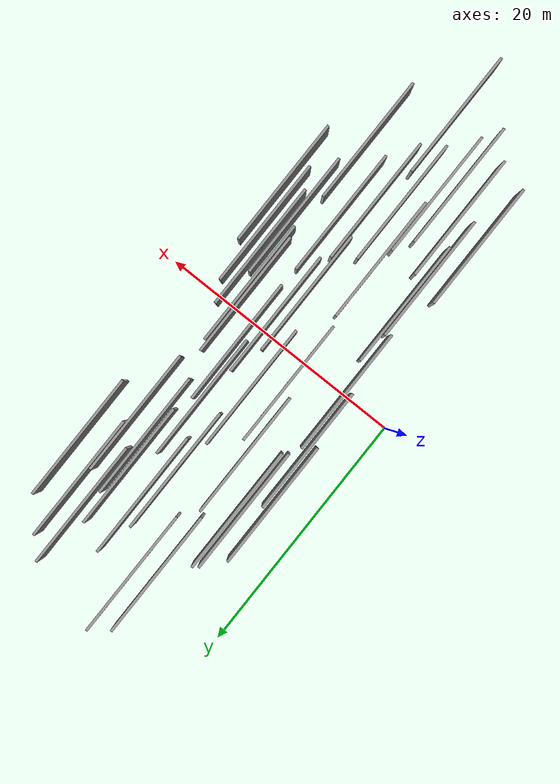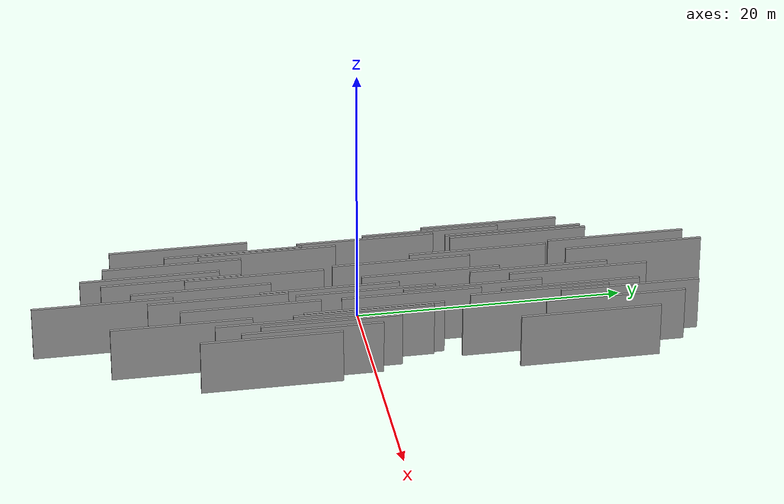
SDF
<sdf version="1.6">
 <world name="default">
  <scene>
   <sky><clouds><speed>12</speed></clouds></sky>
   <ambient>0.4 0.4 0.4 1</ambient>
   <background>0.7 0.7 0.7 1</background>
   <shadows>1</shadows>
  </scene>
  <gravity>0 0 -9.8066</gravity>
  <magnetic_field>6e-06 2.3e-05 -4.2e-05</magnetic_field>
  <physics default="0" name="default_physics" type="ode">
   <ode>
    <solver>
     <type>quick</type>
     <iters>10</iters>
     <sor>1.0</sor>
     <use_dynamic_moi_rescaling>0</use_dynamic_moi_rescaling>
    </solver>
    <constraints>
     <cfm>0</cfm>
     <erp>0.2</erp>
     <contact_max_correcting_vel>100</contact_max_correcting_vel>
     <contact_surface_layer>0.001</contact_surface_layer>
    </constraints>
   </ode>
   <max_step_size>0.004</max_step_size>
   <real_time_factor>1</real_time_factor>
   <real_time_update_rate>250</real_time_update_rate>
  </physics>
  <light name="sun" type="directional">
   <pose>0 0 10 0 0 0</pose>
   <diffuse>0.8 0.8 0.8 1</diffuse>
   <specular>0.2 0.2 0.2 1</specular>
   <attenuation>
    <range>1000</range>
    <constant>0.9</constant>
    <linear>0.01</linear>
    <quadratic>0.001</quadratic>
   </attenuation>
   <direction>-0.5 0.1 -0.9</direction>
  </light>
  <model name="grey_wall_1">
   <static>1</static>
   <pose>9.5534 3.7458 5.0 0.000000 0.000000 1.570796</pose>
   <link name="link">
    <pose>0 0 2.00 0 0 0</pose>
    <collision name="collision"><geometry><box><size>10.00 0.2 4.00</size></box></geometry></collision>
    <visual name="visual">
     <cast_shadows>0</cast_shadows>
     <geometry><box><size>10.00 0.2 4.00</size></box></geometry>
     <material>
      <script>
       <uri>model://grey_wall/materials/scripts</uri>
       <uri>model://grey_wall/materials/textures</uri>
       <name>vrc/grey_wall</name>
      </script>
     </material>
    </visual>
   </link>
  </model>
  <model name="grey_wall_2">
   <static>1</static>
   <pose>4.1947 -0.1144 5.0 0.000000 0.000000 1.570796</pose>
   <link name="link">
    <pose>0 0 2.00 0 0 0</pose>
    <collision name="collision"><geometry><box><size>10.00 0.2 4.00</size></box></geometry></collision>
    <visual name="visual">
     <cast_shadows>0</cast_shadows>
     <geometry><box><size>10.00 0.2 4.00</size></box></geometry>
     <material>
      <script>
       <uri>model://grey_wall/materials/scripts</uri>
       <uri>model://grey_wall/materials/textures</uri>
       <name>vrc/grey_wall</name>
      </script>
     </material>
    </visual>
   </link>
  </model>
  <model name="grey_wall_3">
   <static>1</static>
   <pose>13.8766 -14.6473 5.0 0.000000 0.000000 1.570796</pose>
   <link name="link">
    <pose>0 0 2.00 0 0 0</pose>
    <collision name="collision"><geometry><box><size>10.00 0.2 4.00</size></box></geometry></collision>
    <visual name="visual">
     <cast_shadows>0</cast_shadows>
     <geometry><box><size>10.00 0.2 4.00</size></box></geometry>
     <material>
      <script>
       <uri>model://grey_wall/materials/scripts</uri>
       <uri>model://grey_wall/materials/textures</uri>
       <name>vrc/grey_wall</name>
      </script>
     </material>
    </visual>
   </link>
  </model>
  <model name="grey_wall_4">
   <static>1</static>
   <pose>12.8027 13.2292 5.0 0.000000 0.000000 1.570796</pose>
   <link name="link">
    <pose>0 0 2.00 0 0 0</pose>
    <collision name="collision"><geometry><box><size>10.00 0.2 4.00</size></box></geometry></collision>
    <visual name="visual">
     <cast_shadows>0</cast_shadows>
     <geometry><box><size>10.00 0.2 4.00</size></box></geometry>
     <material>
      <script>
       <uri>model://grey_wall/materials/scripts</uri>
       <uri>model://grey_wall/materials/textures</uri>
       <name>vrc/grey_wall</name>
      </script>
     </material>
    </visual>
   </link>
  </model>
  <model name="grey_wall_5">
   <static>1</static>
   <pose>10.1841 -19.8074 5.0 0.000000 0.000000 1.570796</pose>
   <link name="link">
    <pose>0 0 2.00 0 0 0</pose>
    <collision name="collision"><geometry><box><size>10.00 0.2 4.00</size></box></geometry></collision>
    <visual name="visual">
     <cast_shadows>0</cast_shadows>
     <geometry><box><size>10.00 0.2 4.00</size></box></geometry>
     <material>
      <script>
       <uri>model://grey_wall/materials/scripts</uri>
       <uri>model://grey_wall/materials/textures</uri>
       <name>vrc/grey_wall</name>
      </script>
     </material>
    </visual>
   </link>
  </model>
  <model name="grey_wall_6">
   <static>1</static>
   <pose>7.9940 18.9209 5.0 0.000000 0.000000 1.570796</pose>
   <link name="link">
    <pose>0 0 2.00 0 0 0</pose>
    <collision name="collision"><geometry><box><size>10.00 0.2 4.00</size></box></geometry></collision>
    <visual name="visual">
     <cast_shadows>0</cast_shadows>
     <geometry><box><size>10.00 0.2 4.00</size></box></geometry>
     <material>
      <script>
       <uri>model://grey_wall/materials/scripts</uri>
       <uri>model://grey_wall/materials/textures</uri>
       <name>vrc/grey_wall</name>
      </script>
     </material>
    </visual>
   </link>
  </model>
  <model name="grey_wall_7">
   <static>1</static>
   <pose>5.0252 10.9906 5.0 0.000000 0.000000 1.570796</pose>
   <link name="link">
    <pose>0 0 2.00 0 0 0</pose>
    <collision name="collision"><geometry><box><size>10.00 0.2 4.00</size></box></geometry></collision>
    <visual name="visual">
     <cast_shadows>0</cast_shadows>
     <geometry><box><size>10.00 0.2 4.00</size></box></geometry>
     <material>
      <script>
       <uri>model://grey_wall/materials/scripts</uri>
       <uri>model://grey_wall/materials/textures</uri>
       <name>vrc/grey_wall</name>
      </script>
     </material>
    </visual>
   </link>
  </model>
  <model name="grey_wall_8">
   <static>1</static>
   <pose>8.0537 -8.7369 5.0 0.000000 0.000000 1.570796</pose>
   <link name="link">
    <pose>0 0 2.00 0 0 0</pose>
    <collision name="collision"><geometry><box><size>10.00 0.2 4.00</size></box></geometry></collision>
    <visual name="visual">
     <cast_shadows>0</cast_shadows>
     <geometry><box><size>10.00 0.2 4.00</size></box></geometry>
     <material>
      <script>
       <uri>model://grey_wall/materials/scripts</uri>
       <uri>model://grey_wall/materials/textures</uri>
       <name>vrc/grey_wall</name>
      </script>
     </material>
    </visual>
   </link>
  </model>
  <model name="grey_wall_9">
   <static>1</static>
   <pose>10.6077 -3.7105 5.0 0.000000 0.000000 1.570796</pose>
   <link name="link">
    <pose>0 0 2.00 0 0 0</pose>
    <collision name="collision"><geometry><box><size>10.00 0.2 4.00</size></box></geometry></collision>
    <visual name="visual">
     <cast_shadows>0</cast_shadows>
     <geometry><box><size>10.00 0.2 4.00</size></box></geometry>
     <material>
      <script>
       <uri>model://grey_wall/materials/scripts</uri>
       <uri>model://grey_wall/materials/textures</uri>
       <name>vrc/grey_wall</name>
      </script>
     </material>
    </visual>
   </link>
  </model>
  <model name="grey_wall_10">
   <static>1</static>
   <pose>15.8843 -5.7240 5.0 0.000000 0.000000 1.570796</pose>
   <link name="link">
    <pose>0 0 2.00 0 0 0</pose>
    <collision name="collision"><geometry><box><size>10.00 0.2 4.00</size></box></geometry></collision>
    <visual name="visual">
     <cast_shadows>0</cast_shadows>
     <geometry><box><size>10.00 0.2 4.00</size></box></geometry>
     <material>
      <script>
       <uri>model://grey_wall/materials/scripts</uri>
       <uri>model://grey_wall/materials/textures</uri>
       <name>vrc/grey_wall</name>
      </script>
     </material>
    </visual>
   </link>
  </model>
  <model name="grey_wall_11">
   <static>1</static>
   <pose>4.5751 -9.7966 5.0 0.000000 0.000000 1.570796</pose>
   <link name="link">
    <pose>0 0 2.00 0 0 0</pose>
    <collision name="collision"><geometry><box><size>10.00 0.2 4.00</size></box></geometry></collision>
    <visual name="visual">
     <cast_shadows>0</cast_shadows>
     <geometry><box><size>10.00 0.2 4.00</size></box></geometry>
     <material>
      <script>
       <uri>model://grey_wall/materials/scripts</uri>
       <uri>model://grey_wall/materials/textures</uri>
       <name>vrc/grey_wall</name>
      </script>
     </material>
    </visual>
   </link>
  </model>
  <model name="grey_wall_12">
   <static>1</static>
   <pose>11.8149 6.3750 5.0 0.000000 0.000000 1.570796</pose>
   <link name="link">
    <pose>0 0 2.00 0 0 0</pose>
    <collision name="collision"><geometry><box><size>10.00 0.2 4.00</size></box></geometry></collision>
    <visual name="visual">
     <cast_shadows>0</cast_shadows>
     <geometry><box><size>10.00 0.2 4.00</size></box></geometry>
     <material>
      <script>
       <uri>model://grey_wall/materials/scripts</uri>
       <uri>model://grey_wall/materials/textures</uri>
       <name>vrc/grey_wall</name>
      </script>
     </material>
    </visual>
   </link>
  </model>
  <model name="grey_wall_13">
   <static>1</static>
   <pose>12.2976 1.8911 5.0 0.000000 0.000000 1.570796</pose>
   <link name="link">
    <pose>0 0 2.00 0 0 0</pose>
    <collision name="collision"><geometry><box><size>10.00 0.2 4.00</size></box></geometry></collision>
    <visual name="visual">
     <cast_shadows>0</cast_shadows>
     <geometry><box><size>10.00 0.2 4.00</size></box></geometry>
     <material>
      <script>
       <uri>model://grey_wall/materials/scripts</uri>
       <uri>model://grey_wall/materials/textures</uri>
       <name>vrc/grey_wall</name>
      </script>
     </material>
    </visual>
   </link>
  </model>
  <model name="grey_wall_14">
   <static>1</static>
   <pose>7.0033 -16.1075 5.0 0.000000 0.000000 1.570796</pose>
   <link name="link">
    <pose>0 0 2.00 0 0 0</pose>
    <collision name="collision"><geometry><box><size>10.00 0.2 4.00</size></box></geometry></collision>
    <visual name="visual">
     <cast_shadows>0</cast_shadows>
     <geometry><box><size>10.00 0.2 4.00</size></box></geometry>
     <material>
      <script>
       <uri>model://grey_wall/materials/scripts</uri>
       <uri>model://grey_wall/materials/textures</uri>
       <name>vrc/grey_wall</name>
      </script>
     </material>
    </visual>
   </link>
  </model>
  <model name="grey_wall_15">
   <static>1</static>
   <pose>14.6371 -7.3992 5.0 0.000000 0.000000 1.570796</pose>
   <link name="link">
    <pose>0 0 2.00 0 0 0</pose>
    <collision name="collision"><geometry><box><size>10.00 0.2 4.00</size></box></geometry></collision>
    <visual name="visual">
     <cast_shadows>0</cast_shadows>
     <geometry><box><size>10.00 0.2 4.00</size></box></geometry>
     <material>
      <script>
       <uri>model://grey_wall/materials/scripts</uri>
       <uri>model://grey_wall/materials/textures</uri>
       <name>vrc/grey_wall</name>
      </script>
     </material>
    </visual>
   </link>
  </model>
  <model name="grey_wall_16">
   <static>1</static>
   <pose>11.3830 -1.2493 5.0 0.000000 0.000000 1.570796</pose>
   <link name="link">
    <pose>0 0 2.00 0 0 0</pose>
    <collision name="collision"><geometry><box><size>10.00 0.2 4.00</size></box></geometry></collision>
    <visual name="visual">
     <cast_shadows>0</cast_shadows>
     <geometry><box><size>10.00 0.2 4.00</size></box></geometry>
     <material>
      <script>
       <uri>model://grey_wall/materials/scripts</uri>
       <uri>model://grey_wall/materials/textures</uri>
       <name>vrc/grey_wall</name>
      </script>
     </material>
    </visual>
   </link>
  </model>
  <model name="grey_wall_17">
   <static>1</static>
   <pose>12.2150 -9.5600 5.0 0.000000 0.000000 1.570796</pose>
   <link name="link">
    <pose>0 0 2.00 0 0 0</pose>
    <collision name="collision"><geometry><box><size>10.00 0.2 4.00</size></box></geometry></collision>
    <visual name="visual">
     <cast_shadows>0</cast_shadows>
     <geometry><box><size>10.00 0.2 4.00</size></box></geometry>
     <material>
      <script>
       <uri>model://grey_wall/materials/scripts</uri>
       <uri>model://grey_wall/materials/textures</uri>
       <name>vrc/grey_wall</name>
      </script>
     </material>
    </visual>
   </link>
  </model>
  <model name="grey_wall_18">
   <static>1</static>
   <pose>6.9834 7.6423 5.0 0.000000 0.000000 1.570796</pose>
   <link name="link">
    <pose>0 0 2.00 0 0 0</pose>
    <collision name="collision"><geometry><box><size>10.00 0.2 4.00</size></box></geometry></collision>
    <visual name="visual">
     <cast_shadows>0</cast_shadows>
     <geometry><box><size>10.00 0.2 4.00</size></box></geometry>
     <material>
      <script>
       <uri>model://grey_wall/materials/scripts</uri>
       <uri>model://grey_wall/materials/textures</uri>
       <name>vrc/grey_wall</name>
      </script>
     </material>
    </visual>
   </link>
  </model>
  <model name="grey_wall_19">
   <static>1</static>
   <pose>16.6287 -8.6977 5.0 0.000000 0.000000 1.570796</pose>
   <link name="link">
    <pose>0 0 2.00 0 0 0</pose>
    <collision name="collision"><geometry><box><size>10.00 0.2 4.00</size></box></geometry></collision>
    <visual name="visual">
     <cast_shadows>0</cast_shadows>
     <geometry><box><size>10.00 0.2 4.00</size></box></geometry>
     <material>
      <script>
       <uri>model://grey_wall/materials/scripts</uri>
       <uri>model://grey_wall/materials/textures</uri>
       <name>vrc/grey_wall</name>
      </script>
     </material>
    </visual>
   </link>
  </model>
  <model name="grey_wall_20">
   <static>1</static>
   <pose>14.9559 16.0531 5.0 0.000000 0.000000 1.570796</pose>
   <link name="link">
    <pose>0 0 2.00 0 0 0</pose>
    <collision name="collision"><geometry><box><size>10.00 0.2 4.00</size></box></geometry></collision>
    <visual name="visual">
     <cast_shadows>0</cast_shadows>
     <geometry><box><size>10.00 0.2 4.00</size></box></geometry>
     <material>
      <script>
       <uri>model://grey_wall/materials/scripts</uri>
       <uri>model://grey_wall/materials/textures</uri>
       <name>vrc/grey_wall</name>
      </script>
     </material>
    </visual>
   </link>
  </model>
  <model name="grey_wall_21">
   <static>1</static>
   <pose>14.7286 10.0912 5.0 0.000000 0.000000 1.570796</pose>
   <link name="link">
    <pose>0 0 2.00 0 0 0</pose>
    <collision name="collision"><geometry><box><size>10.00 0.2 4.00</size></box></geometry></collision>
    <visual name="visual">
     <cast_shadows>0</cast_shadows>
     <geometry><box><size>10.00 0.2 4.00</size></box></geometry>
     <material>
      <script>
       <uri>model://grey_wall/materials/scripts</uri>
       <uri>model://grey_wall/materials/textures</uri>
       <name>vrc/grey_wall</name>
      </script>
     </material>
    </visual>
   </link>
  </model>
  <model name="grey_wall_22">
   <static>1</static>
   <pose>6.6278 17.8855 5.0 0.000000 0.000000 1.570796</pose>
   <link name="link">
    <pose>0 0 2.00 0 0 0</pose>
    <collision name="collision"><geometry><box><size>10.00 0.2 4.00</size></box></geometry></collision>
    <visual name="visual">
     <cast_shadows>0</cast_shadows>
     <geometry><box><size>10.00 0.2 4.00</size></box></geometry>
     <material>
      <script>
       <uri>model://grey_wall/materials/scripts</uri>
       <uri>model://grey_wall/materials/textures</uri>
       <name>vrc/grey_wall</name>
      </script>
     </material>
    </visual>
   </link>
  </model>
  <model name="grey_wall_23">
   <static>1</static>
   <pose>13.8802 -1.0498 5.0 0.000000 0.000000 1.570796</pose>
   <link name="link">
    <pose>0 0 2.00 0 0 0</pose>
    <collision name="collision"><geometry><box><size>10.00 0.2 4.00</size></box></geometry></collision>
    <visual name="visual">
     <cast_shadows>0</cast_shadows>
     <geometry><box><size>10.00 0.2 4.00</size></box></geometry>
     <material>
      <script>
       <uri>model://grey_wall/materials/scripts</uri>
       <uri>model://grey_wall/materials/textures</uri>
       <name>vrc/grey_wall</name>
      </script>
     </material>
    </visual>
   </link>
  </model>
  <model name="grey_wall_24">
   <static>1</static>
   <pose>3.3394 9.1635 5.0 0.000000 0.000000 1.570796</pose>
   <link name="link">
    <pose>0 0 2.00 0 0 0</pose>
    <collision name="collision"><geometry><box><size>10.00 0.2 4.00</size></box></geometry></collision>
    <visual name="visual">
     <cast_shadows>0</cast_shadows>
     <geometry><box><size>10.00 0.2 4.00</size></box></geometry>
     <material>
      <script>
       <uri>model://grey_wall/materials/scripts</uri>
       <uri>model://grey_wall/materials/textures</uri>
       <name>vrc/grey_wall</name>
      </script>
     </material>
    </visual>
   </link>
  </model>
  <model name="grey_wall_25">
   <static>1</static>
   <pose>16.7830 13.8803 5.0 0.000000 0.000000 1.570796</pose>
   <link name="link">
    <pose>0 0 2.00 0 0 0</pose>
    <collision name="collision"><geometry><box><size>10.00 0.2 4.00</size></box></geometry></collision>
    <visual name="visual">
     <cast_shadows>0</cast_shadows>
     <geometry><box><size>10.00 0.2 4.00</size></box></geometry>
     <material>
      <script>
       <uri>model://grey_wall/materials/scripts</uri>
       <uri>model://grey_wall/materials/textures</uri>
       <name>vrc/grey_wall</name>
      </script>
     </material>
    </visual>
   </link>
  </model>
  <model name="grey_wall_26">
   <static>1</static>
   <pose>7.7108 1.9240 5.0 0.000000 0.000000 1.570796</pose>
   <link name="link">
    <pose>0 0 2.00 0 0 0</pose>
    <collision name="collision"><geometry><box><size>10.00 0.2 4.00</size></box></geometry></collision>
    <visual name="visual">
     <cast_shadows>0</cast_shadows>
     <geometry><box><size>10.00 0.2 4.00</size></box></geometry>
     <material>
      <script>
       <uri>model://grey_wall/materials/scripts</uri>
       <uri>model://grey_wall/materials/textures</uri>
       <name>vrc/grey_wall</name>
      </script>
     </material>
    </visual>
   </link>
  </model>
  <model name="grey_wall_27">
   <static>1</static>
   <pose>5.5621 -14.3646 5.0 0.000000 0.000000 1.570796</pose>
   <link name="link">
    <pose>0 0 2.00 0 0 0</pose>
    <collision name="collision"><geometry><box><size>10.00 0.2 4.00</size></box></geometry></collision>
    <visual name="visual">
     <cast_shadows>0</cast_shadows>
     <geometry><box><size>10.00 0.2 4.00</size></box></geometry>
     <material>
      <script>
       <uri>model://grey_wall/materials/scripts</uri>
       <uri>model://grey_wall/materials/textures</uri>
       <name>vrc/grey_wall</name>
      </script>
     </material>
    </visual>
   </link>
  </model>
  <model name="grey_wall_28">
   <static>1</static>
   <pose>3.7804 4.7349 5.0 0.000000 0.000000 1.570796</pose>
   <link name="link">
    <pose>0 0 2.00 0 0 0</pose>
    <collision name="collision"><geometry><box><size>10.00 0.2 4.00</size></box></geometry></collision>
    <visual name="visual">
     <cast_shadows>0</cast_shadows>
     <geometry><box><size>10.00 0.2 4.00</size></box></geometry>
     <material>
      <script>
       <uri>model://grey_wall/materials/scripts</uri>
       <uri>model://grey_wall/materials/textures</uri>
       <name>vrc/grey_wall</name>
      </script>
     </material>
    </visual>
   </link>
  </model>
  <model name="grey_wall_29">
   <static>1</static>
   <pose>3.3167 -13.6300 5.0 0.000000 0.000000 1.570796</pose>
   <link name="link">
    <pose>0 0 2.00 0 0 0</pose>
    <collision name="collision"><geometry><box><size>10.00 0.2 4.00</size></box></geometry></collision>
    <visual name="visual">
     <cast_shadows>0</cast_shadows>
     <geometry><box><size>10.00 0.2 4.00</size></box></geometry>
     <material>
      <script>
       <uri>model://grey_wall/materials/scripts</uri>
       <uri>model://grey_wall/materials/textures</uri>
       <name>vrc/grey_wall</name>
      </script>
     </material>
    </visual>
   </link>
  </model>
  <model name="grey_wall_30">
   <static>1</static>
   <pose>10.0948 11.4869 5.0 0.000000 0.000000 1.570796</pose>
   <link name="link">
    <pose>0 0 2.00 0 0 0</pose>
    <collision name="collision"><geometry><box><size>10.00 0.2 4.00</size></box></geometry></collision>
    <visual name="visual">
     <cast_shadows>0</cast_shadows>
     <geometry><box><size>10.00 0.2 4.00</size></box></geometry>
     <material>
      <script>
       <uri>model://grey_wall/materials/scripts</uri>
       <uri>model://grey_wall/materials/textures</uri>
       <name>vrc/grey_wall</name>
      </script>
     </material>
    </visual>
   </link>
  </model>
  <model name="grey_wall_31">
   <static>1</static>
   <pose>13.6685 17.3730 5.0 0.000000 0.000000 1.570796</pose>
   <link name="link">
    <pose>0 0 2.00 0 0 0</pose>
    <collision name="collision"><geometry><box><size>10.00 0.2 4.00</size></box></geometry></collision>
    <visual name="visual">
     <cast_shadows>0</cast_shadows>
     <geometry><box><size>10.00 0.2 4.00</size></box></geometry>
     <material>
      <script>
       <uri>model://grey_wall/materials/scripts</uri>
       <uri>model://grey_wall/materials/textures</uri>
       <name>vrc/grey_wall</name>
      </script>
     </material>
    </visual>
   </link>
  </model>
  <model name="grey_wall_32">
   <static>1</static>
   <pose>14.1325 -1.8295 5.0 0.000000 0.000000 1.570796</pose>
   <link name="link">
    <pose>0 0 2.00 0 0 0</pose>
    <collision name="collision"><geometry><box><size>10.00 0.2 4.00</size></box></geometry></collision>
    <visual name="visual">
     <cast_shadows>0</cast_shadows>
     <geometry><box><size>10.00 0.2 4.00</size></box></geometry>
     <material>
      <script>
       <uri>model://grey_wall/materials/scripts</uri>
       <uri>model://grey_wall/materials/textures</uri>
       <name>vrc/grey_wall</name>
      </script>
     </material>
    </visual>
   </link>
  </model>
  <model name="grey_wall_33">
   <static>1</static>
   <pose>7.8216 -14.6856 5.0 0.000000 0.000000 1.570796</pose>
   <link name="link">
    <pose>0 0 2.00 0 0 0</pose>
    <collision name="collision"><geometry><box><size>10.00 0.2 4.00</size></box></geometry></collision>
    <visual name="visual">
     <cast_shadows>0</cast_shadows>
     <geometry><box><size>10.00 0.2 4.00</size></box></geometry>
     <material>
      <script>
       <uri>model://grey_wall/materials/scripts</uri>
       <uri>model://grey_wall/materials/textures</uri>
       <name>vrc/grey_wall</name>
      </script>
     </material>
    </visual>
   </link>
  </model>
  <model name="grey_wall_34">
   <static>1</static>
   <pose>10.8573 -11.6954 5.0 0.000000 0.000000 1.570796</pose>
   <link name="link">
    <pose>0 0 2.00 0 0 0</pose>
    <collision name="collision"><geometry><box><size>10.00 0.2 4.00</size></box></geometry></collision>
    <visual name="visual">
     <cast_shadows>0</cast_shadows>
     <geometry><box><size>10.00 0.2 4.00</size></box></geometry>
     <material>
      <script>
       <uri>model://grey_wall/materials/scripts</uri>
       <uri>model://grey_wall/materials/textures</uri>
       <name>vrc/grey_wall</name>
      </script>
     </material>
    </visual>
   </link>
  </model>
  <model name="grey_wall_35">
   <static>1</static>
   <pose>4.6521 10.7062 5.0 0.000000 0.000000 1.570796</pose>
   <link name="link">
    <pose>0 0 2.00 0 0 0</pose>
    <collision name="collision"><geometry><box><size>10.00 0.2 4.00</size></box></geometry></collision>
    <visual name="visual">
     <cast_shadows>0</cast_shadows>
     <geometry><box><size>10.00 0.2 4.00</size></box></geometry>
     <material>
      <script>
       <uri>model://grey_wall/materials/scripts</uri>
       <uri>model://grey_wall/materials/textures</uri>
       <name>vrc/grey_wall</name>
      </script>
     </material>
    </visual>
   </link>
  </model>
  <model name="grey_wall_36">
   <static>1</static>
   <pose>10.8034 14.2233 5.0 0.000000 0.000000 1.570796</pose>
   <link name="link">
    <pose>0 0 2.00 0 0 0</pose>
    <collision name="collision"><geometry><box><size>10.00 0.2 4.00</size></box></geometry></collision>
    <visual name="visual">
     <cast_shadows>0</cast_shadows>
     <geometry><box><size>10.00 0.2 4.00</size></box></geometry>
     <material>
      <script>
       <uri>model://grey_wall/materials/scripts</uri>
       <uri>model://grey_wall/materials/textures</uri>
       <name>vrc/grey_wall</name>
      </script>
     </material>
    </visual>
   </link>
  </model>
  <model name="grey_wall_37">
   <static>1</static>
   <pose>15.1300 -4.2638 5.0 0.000000 0.000000 1.570796</pose>
   <link name="link">
    <pose>0 0 2.00 0 0 0</pose>
    <collision name="collision"><geometry><box><size>10.00 0.2 4.00</size></box></geometry></collision>
    <visual name="visual">
     <cast_shadows>0</cast_shadows>
     <geometry><box><size>10.00 0.2 4.00</size></box></geometry>
     <material>
      <script>
       <uri>model://grey_wall/materials/scripts</uri>
       <uri>model://grey_wall/materials/textures</uri>
       <name>vrc/grey_wall</name>
      </script>
     </material>
    </visual>
   </link>
  </model>
  <model name="grey_wall_38">
   <static>1</static>
   <pose>9.3544 -12.7298 5.0 0.000000 0.000000 1.570796</pose>
   <link name="link">
    <pose>0 0 2.00 0 0 0</pose>
    <collision name="collision"><geometry><box><size>10.00 0.2 4.00</size></box></geometry></collision>
    <visual name="visual">
     <cast_shadows>0</cast_shadows>
     <geometry><box><size>10.00 0.2 4.00</size></box></geometry>
     <material>
      <script>
       <uri>model://grey_wall/materials/scripts</uri>
       <uri>model://grey_wall/materials/textures</uri>
       <name>vrc/grey_wall</name>
      </script>
     </material>
    </visual>
   </link>
  </model>
  <model name="grey_wall_39">
   <static>1</static>
   <pose>4.8169 -7.3758 5.0 0.000000 0.000000 1.570796</pose>
   <link name="link">
    <pose>0 0 2.00 0 0 0</pose>
    <collision name="collision"><geometry><box><size>10.00 0.2 4.00</size></box></geometry></collision>
    <visual name="visual">
     <cast_shadows>0</cast_shadows>
     <geometry><box><size>10.00 0.2 4.00</size></box></geometry>
     <material>
      <script>
       <uri>model://grey_wall/materials/scripts</uri>
       <uri>model://grey_wall/materials/textures</uri>
       <name>vrc/grey_wall</name>
      </script>
     </material>
    </visual>
   </link>
  </model>
  <model name="grey_wall_40">
   <static>1</static>
   <pose>13.2415 10.9192 5.0 0.000000 0.000000 1.570796</pose>
   <link name="link">
    <pose>0 0 2.00 0 0 0</pose>
    <collision name="collision"><geometry><box><size>10.00 0.2 4.00</size></box></geometry></collision>
    <visual name="visual">
     <cast_shadows>0</cast_shadows>
     <geometry><box><size>10.00 0.2 4.00</size></box></geometry>
     <material>
      <script>
       <uri>model://grey_wall/materials/scripts</uri>
       <uri>model://grey_wall/materials/textures</uri>
       <name>vrc/grey_wall</name>
      </script>
     </material>
    </visual>
   </link>
  </model>
 </world>
</sdf>
